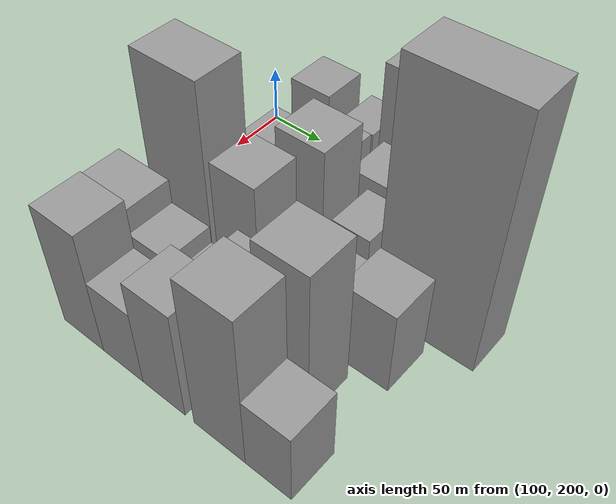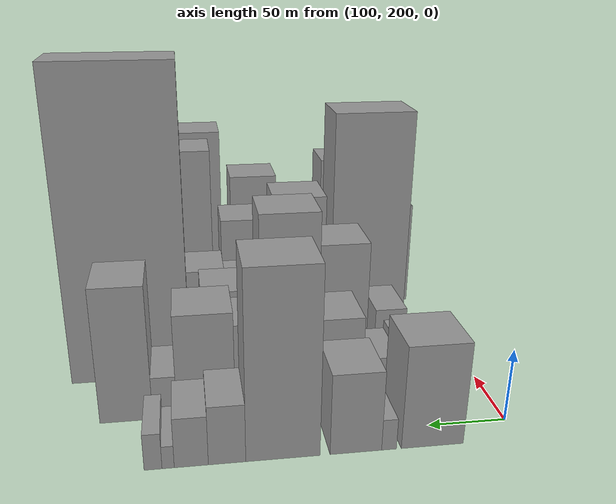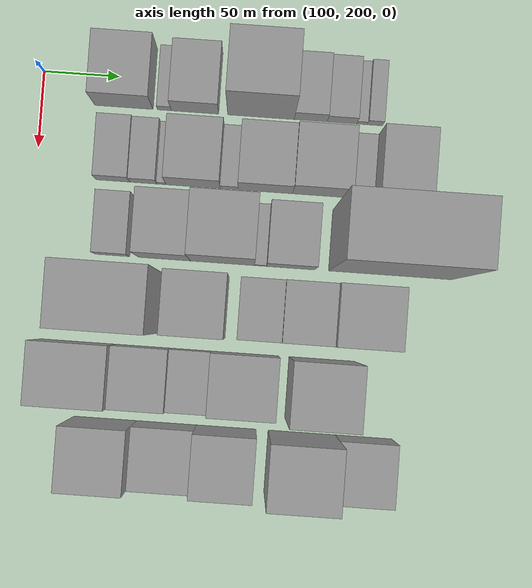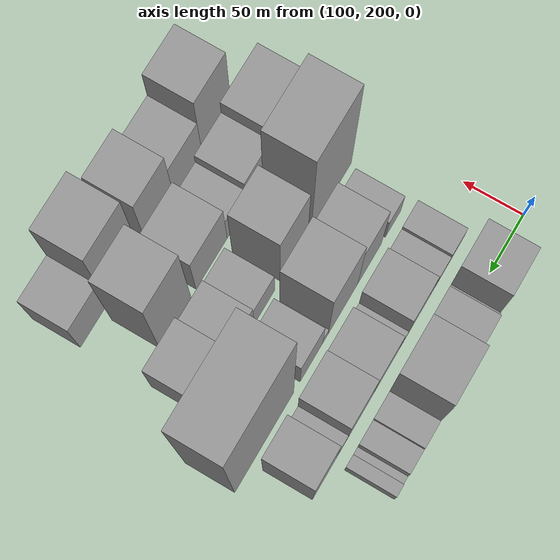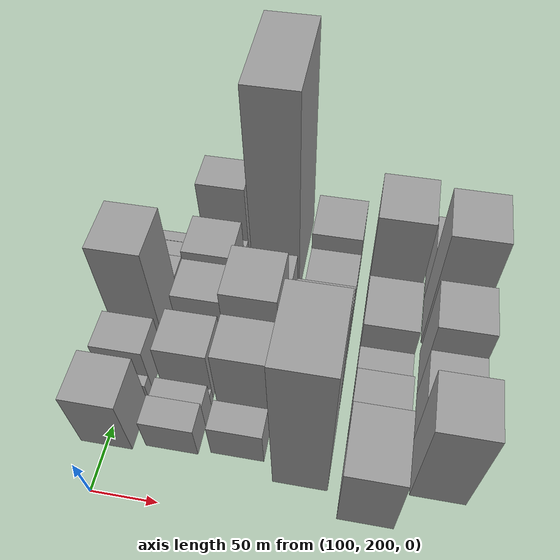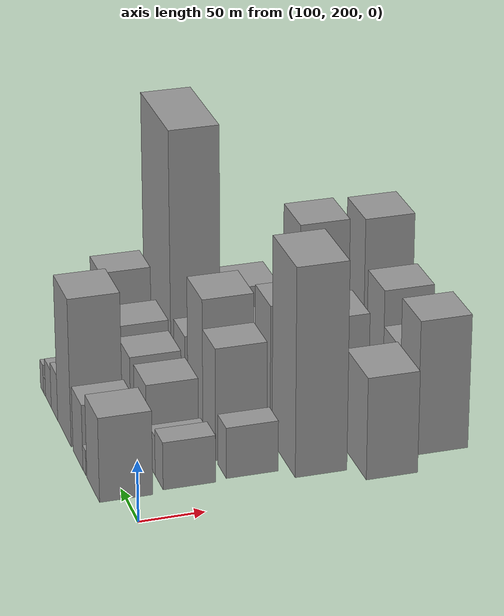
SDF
<sdf version="1.6">
 <world name="default">
  <model name="building_35">
   <static>1</static>
   <pose>100.0000 254.3415 0 0.000000 0.000000 0.000000</pose>
   <link name="link">
    <pose>0 0 34.50 0 0 0</pose>
    <collision name="collision"><geometry><box><size>40.0000 38.4075 69.0000</size></box></geometry></collision>
    <visual name="visual">
     <cast_shadows>0</cast_shadows>
     <geometry><box><size>40.0000 38.4075 69.0000</size></box></geometry>
     <material>
      <script>
       <uri>model://grey_wall/materials/scripts</uri>
       <uri>model://grey_wall/materials/textures</uri>
       <name>vrc/grey_wall</name>
      </script>
     </material>
    </visual>
   </link>
  </model>
  <model name="building_36">
   <static>1</static>
   <pose>100.0000 281.0811 0 0.000000 0.000000 0.000000</pose>
   <link name="link">
    <pose>0 0 10.50 0 0 0</pose>
    <collision name="collision"><geometry><box><size>40.0000 9.0717 21.0000</size></box></geometry></collision>
    <visual name="visual">
     <cast_shadows>0</cast_shadows>
     <geometry><box><size>40.0000 9.0717 21.0000</size></box></geometry>
     <material>
      <script>
       <uri>model://grey_wall/materials/scripts</uri>
       <uri>model://grey_wall/materials/textures</uri>
       <name>vrc/grey_wall</name>
      </script>
     </material>
    </visual>
   </link>
  </model>
  <model name="building_37">
   <static>1</static>
   <pose>100.0000 301.2184 0 0.000000 0.000000 0.000000</pose>
   <link name="link">
    <pose>0 0 27.00 0 0 0</pose>
    <collision name="collision"><geometry><box><size>40.0000 31.2029 54.0000</size></box></geometry></collision>
    <visual name="visual">
     <cast_shadows>0</cast_shadows>
     <geometry><box><size>40.0000 31.2029 54.0000</size></box></geometry>
     <material>
      <script>
       <uri>model://grey_wall/materials/scripts</uri>
       <uri>model://grey_wall/materials/textures</uri>
       <name>vrc/grey_wall</name>
      </script>
     </material>
    </visual>
   </link>
  </model>
  <model name="building_38">
   <static>1</static>
   <pose>100.0000 344.7618 0 0.000000 0.000000 0.000000</pose>
   <link name="link">
    <pose>0 0 61.50 0 0 0</pose>
    <collision name="collision"><geometry><box><size>40.0000 43.8839 123.0000</size></box></geometry></collision>
    <visual name="visual">
     <cast_shadows>0</cast_shadows>
     <geometry><box><size>40.0000 43.8839 123.0000</size></box></geometry>
     <material>
      <script>
       <uri>model://grey_wall/materials/scripts</uri>
       <uri>model://grey_wall/materials/textures</uri>
       <name>vrc/grey_wall</name>
      </script>
     </material>
    </visual>
   </link>
  </model>
  <model name="building_39">
   <static>1</static>
   <pose>100.0000 377.5432 0 0.000000 0.000000 0.000000</pose>
   <link name="link">
    <pose>0 0 19.50 0 0 0</pose>
    <collision name="collision"><geometry><box><size>40.0000 21.6790 39.0000</size></box></geometry></collision>
    <visual name="visual">
     <cast_shadows>0</cast_shadows>
     <geometry><box><size>40.0000 21.6790 39.0000</size></box></geometry>
     <material>
      <script>
       <uri>model://grey_wall/materials/scripts</uri>
       <uri>model://grey_wall/materials/textures</uri>
       <name>vrc/grey_wall</name>
      </script>
     </material>
    </visual>
   </link>
  </model>
  <model name="building_40">
   <static>1</static>
   <pose>100.0000 398.1407 0 0.000000 0.000000 0.000000</pose>
   <link name="link">
    <pose>0 0 16.50 0 0 0</pose>
    <collision name="collision"><geometry><box><size>40.0000 19.5160 33.0000</size></box></geometry></collision>
    <visual name="visual">
     <cast_shadows>0</cast_shadows>
     <geometry><box><size>40.0000 19.5160 33.0000</size></box></geometry>
     <material>
      <script>
       <uri>model://grey_wall/materials/scripts</uri>
       <uri>model://grey_wall/materials/textures</uri>
       <name>vrc/grey_wall</name>
      </script>
     </material>
    </visual>
   </link>
  </model>
  <model name="building_41">
   <static>1</static>
   <pose>100.0000 411.3787 0 0.000000 0.000000 0.000000</pose>
   <link name="link">
    <pose>0 0 7.50 0 0 0</pose>
    <collision name="collision"><geometry><box><size>40.0000 6.9599 15.0000</size></box></geometry></collision>
    <visual name="visual">
     <cast_shadows>0</cast_shadows>
     <geometry><box><size>40.0000 6.9599 15.0000</size></box></geometry>
     <material>
      <script>
       <uri>model://grey_wall/materials/scripts</uri>
       <uri>model://grey_wall/materials/textures</uri>
       <name>vrc/grey_wall</name>
      </script>
     </material>
    </visual>
   </link>
  </model>
  <model name="building_42">
   <static>1</static>
   <pose>100.0000 419.9391 0 0.000000 0.000000 0.000000</pose>
   <link name="link">
    <pose>0 0 12.00 0 0 0</pose>
    <collision name="collision"><geometry><box><size>40.0000 10.1609 24.0000</size></box></geometry></collision>
    <visual name="visual">
     <cast_shadows>0</cast_shadows>
     <geometry><box><size>40.0000 10.1609 24.0000</size></box></geometry>
     <material>
      <script>
       <uri>model://grey_wall/materials/scripts</uri>
       <uri>model://grey_wall/materials/textures</uri>
       <name>vrc/grey_wall</name>
      </script>
     </material>
    </visual>
   </link>
  </model>
  <model name="building_90">
   <static>1</static>
   <pose>149.0000 250.9738 0 0.000000 0.000000 0.000000</pose>
   <link name="link">
    <pose>0 0 19.50 0 0 0</pose>
    <collision name="collision"><geometry><box><size>40.0000 22.3221 39.0000</size></box></geometry></collision>
    <visual name="visual">
     <cast_shadows>0</cast_shadows>
     <geometry><box><size>40.0000 22.3221 39.0000</size></box></geometry>
     <material>
      <script>
       <uri>model://grey_wall/materials/scripts</uri>
       <uri>model://grey_wall/materials/textures</uri>
       <name>vrc/grey_wall</name>
      </script>
     </material>
    </visual>
   </link>
  </model>
  <model name="building_91">
   <static>1</static>
   <pose>149.0000 270.9331 0 0.000000 0.000000 0.000000</pose>
   <link name="link">
    <pose>0 0 16.50 0 0 0</pose>
    <collision name="collision"><geometry><box><size>40.0000 17.5966 33.0000</size></box></geometry></collision>
    <visual name="visual">
     <cast_shadows>0</cast_shadows>
     <geometry><box><size>40.0000 17.5966 33.0000</size></box></geometry>
     <material>
      <script>
       <uri>model://grey_wall/materials/scripts</uri>
       <uri>model://grey_wall/materials/textures</uri>
       <name>vrc/grey_wall</name>
      </script>
     </material>
    </visual>
   </link>
  </model>
  <model name="building_92">
   <static>1</static>
   <pose>149.0000 282.7939 0 0.000000 0.000000 0.000000</pose>
   <link name="link">
    <pose>0 0 7.50 0 0 0</pose>
    <collision name="collision"><geometry><box><size>40.0000 6.1250 15.0000</size></box></geometry></collision>
    <visual name="visual">
     <cast_shadows>0</cast_shadows>
     <geometry><box><size>40.0000 6.1250 15.0000</size></box></geometry>
     <material>
      <script>
       <uri>model://grey_wall/materials/scripts</uri>
       <uri>model://grey_wall/materials/textures</uri>
       <name>vrc/grey_wall</name>
      </script>
     </material>
    </visual>
   </link>
  </model>
  <model name="building_93">
   <static>1</static>
   <pose>149.0000 303.6468 0 0.000000 0.000000 0.000000</pose>
   <link name="link">
    <pose>0 0 31.50 0 0 0</pose>
    <collision name="collision"><geometry><box><size>40.0000 35.5808 63.0000</size></box></geometry></collision>
    <visual name="visual">
     <cast_shadows>0</cast_shadows>
     <geometry><box><size>40.0000 35.5808 63.0000</size></box></geometry>
     <material>
      <script>
       <uri>model://grey_wall/materials/scripts</uri>
       <uri>model://grey_wall/materials/textures</uri>
       <name>vrc/grey_wall</name>
      </script>
     </material>
    </visual>
   </link>
  </model>
  <model name="building_94">
   <static>1</static>
   <pose>149.0000 327.3391 0 0.000000 0.000000 0.000000</pose>
   <link name="link">
    <pose>0 0 12.00 0 0 0</pose>
    <collision name="collision"><geometry><box><size>40.0000 11.8040 24.0000</size></box></geometry></collision>
    <visual name="visual">
     <cast_shadows>0</cast_shadows>
     <geometry><box><size>40.0000 11.8040 24.0000</size></box></geometry>
     <material>
      <script>
       <uri>model://grey_wall/materials/scripts</uri>
       <uri>model://grey_wall/materials/textures</uri>
       <name>vrc/grey_wall</name>
      </script>
     </material>
    </visual>
   </link>
  </model>
  <model name="building_95">
   <static>1</static>
   <pose>149.0000 351.0810 0 0.000000 0.000000 0.000000</pose>
   <link name="link">
    <pose>0 0 31.50 0 0 0</pose>
    <collision name="collision"><geometry><box><size>40.0000 35.6799 63.0000</size></box></geometry></collision>
    <visual name="visual">
     <cast_shadows>0</cast_shadows>
     <geometry><box><size>40.0000 35.6799 63.0000</size></box></geometry>
     <material>
      <script>
       <uri>model://grey_wall/materials/scripts</uri>
       <uri>model://grey_wall/materials/textures</uri>
       <name>vrc/grey_wall</name>
      </script>
     </material>
    </visual>
   </link>
  </model>
  <model name="building_96">
   <static>1</static>
   <pose>149.0000 387.4846 0 0.000000 0.000000 0.000000</pose>
   <link name="link">
    <pose>0 0 36.00 0 0 0</pose>
    <collision name="collision"><geometry><box><size>40.0000 37.1271 72.0000</size></box></geometry></collision>
    <visual name="visual">
     <cast_shadows>0</cast_shadows>
     <geometry><box><size>40.0000 37.1271 72.0000</size></box></geometry>
     <material>
      <script>
       <uri>model://grey_wall/materials/scripts</uri>
       <uri>model://grey_wall/materials/textures</uri>
       <name>vrc/grey_wall</name>
      </script>
     </material>
    </visual>
   </link>
  </model>
  <model name="building_97">
   <static>1</static>
   <pose>149.0000 413.6735 0 0.000000 0.000000 0.000000</pose>
   <link name="link">
    <pose>0 0 15.00 0 0 0</pose>
    <collision name="collision"><geometry><box><size>40.0000 15.2506 30.0000</size></box></geometry></collision>
    <visual name="visual">
     <cast_shadows>0</cast_shadows>
     <geometry><box><size>40.0000 15.2506 30.0000</size></box></geometry>
     <material>
      <script>
       <uri>model://grey_wall/materials/scripts</uri>
       <uri>model://grey_wall/materials/textures</uri>
       <name>vrc/grey_wall</name>
      </script>
     </material>
    </visual>
   </link>
  </model>
  <model name="building_98">
   <static>1</static>
   <pose>149.0000 437.7267 0 0.000000 0.000000 0.000000</pose>
   <link name="link">
    <pose>0 0 46.50 0 0 0</pose>
    <collision name="collision"><geometry><box><size>40.0000 32.8558 93.0000</size></box></geometry></collision>
    <visual name="visual">
     <cast_shadows>0</cast_shadows>
     <geometry><box><size>40.0000 32.8558 93.0000</size></box></geometry>
     <material>
      <script>
       <uri>model://grey_wall/materials/scripts</uri>
       <uri>model://grey_wall/materials/textures</uri>
       <name>vrc/grey_wall</name>
      </script>
     </material>
    </visual>
   </link>
  </model>
  <model name="building_145">
   <static>1</static>
   <pose>198.0000 254.0576 0 0.000000 0.000000 0.000000</pose>
   <link name="link">
    <pose>0 0 21.00 0 0 0</pose>
    <collision name="collision"><geometry><box><size>40.0000 22.4533 42.0000</size></box></geometry></collision>
    <visual name="visual">
     <cast_shadows>0</cast_shadows>
     <geometry><box><size>40.0000 22.4533 42.0000</size></box></geometry>
     <material>
      <script>
       <uri>model://grey_wall/materials/scripts</uri>
       <uri>model://grey_wall/materials/textures</uri>
       <name>vrc/grey_wall</name>
      </script>
     </material>
    </visual>
   </link>
  </model>
  <model name="building_146">
   <static>1</static>
   <pose>198.0000 288.4179 0 0.000000 0.000000 0.000000</pose>
   <link name="link">
    <pose>0 0 46.50 0 0 0</pose>
    <collision name="collision"><geometry><box><size>40.0000 34.2671 93.0000</size></box></geometry></collision>
    <visual name="visual">
     <cast_shadows>0</cast_shadows>
     <geometry><box><size>40.0000 34.2671 93.0000</size></box></geometry>
     <material>
      <script>
       <uri>model://grey_wall/materials/scripts</uri>
       <uri>model://grey_wall/materials/textures</uri>
       <name>vrc/grey_wall</name>
      </script>
     </material>
    </visual>
   </link>
  </model>
  <model name="building_147">
   <static>1</static>
   <pose>198.0000 326.5581 0 0.000000 0.000000 0.000000</pose>
   <link name="link">
    <pose>0 0 58.50 0 0 0</pose>
    <collision name="collision"><geometry><box><size>40.0000 42.0132 117.0000</size></box></geometry></collision>
    <visual name="visual">
     <cast_shadows>0</cast_shadows>
     <geometry><box><size>40.0000 42.0132 117.0000</size></box></geometry>
     <material>
      <script>
       <uri>model://grey_wall/materials/scripts</uri>
       <uri>model://grey_wall/materials/textures</uri>
       <name>vrc/grey_wall</name>
      </script>
     </material>
    </visual>
   </link>
  </model>
  <model name="building_148">
   <static>1</static>
   <pose>198.0000 351.4701 0 0.000000 0.000000 0.000000</pose>
   <link name="link">
    <pose>0 0 9.00 0 0 0</pose>
    <collision name="collision"><geometry><box><size>40.0000 7.8107 18.0000</size></box></geometry></collision>
    <visual name="visual">
     <cast_shadows>0</cast_shadows>
     <geometry><box><size>40.0000 7.8107 18.0000</size></box></geometry>
     <material>
      <script>
       <uri>model://grey_wall/materials/scripts</uri>
       <uri>model://grey_wall/materials/textures</uri>
       <name>vrc/grey_wall</name>
      </script>
     </material>
    </visual>
   </link>
  </model>
  <model name="building_149">
   <static>1</static>
   <pose>198.0000 371.3286 0 0.000000 0.000000 0.000000</pose>
   <link name="link">
    <pose>0 0 31.50 0 0 0</pose>
    <collision name="collision"><geometry><box><size>40.0000 31.9063 63.0000</size></box></geometry></collision>
    <visual name="visual">
     <cast_shadows>0</cast_shadows>
     <geometry><box><size>40.0000 31.9063 63.0000</size></box></geometry>
     <material>
      <script>
       <uri>model://grey_wall/materials/scripts</uri>
       <uri>model://grey_wall/materials/textures</uri>
       <name>vrc/grey_wall</name>
      </script>
     </material>
    </visual>
   </link>
  </model>
  <model name="building_150">
   <static>1</static>
   <pose>198.0000 436.7888 0 0.000000 0.000000 0.000000</pose>
   <link name="link">
    <pose>0 0 108.00 0 0 0</pose>
    <collision name="collision"><geometry><box><size>40.0000 81.0141 216.0000</size></box></geometry></collision>
    <visual name="visual">
     <cast_shadows>0</cast_shadows>
     <geometry><box><size>40.0000 81.0141 216.0000</size></box></geometry>
     <material>
      <script>
       <uri>model://grey_wall/materials/scripts</uri>
       <uri>model://grey_wall/materials/textures</uri>
       <name>vrc/grey_wall</name>
      </script>
     </material>
    </visual>
   </link>
  </model>
  <model name="building_186">
   <static>1</static>
   <pose>247.0000 258.4437 0 0.000000 0.000000 0.000000</pose>
   <link name="link">
    <pose>0 0 85.50 0 0 0</pose>
    <collision name="collision"><geometry><box><size>40.0000 58.0077 171.0000</size></box></geometry></collision>
    <visual name="visual">
     <cast_shadows>0</cast_shadows>
     <geometry><box><size>40.0000 58.0077 171.0000</size></box></geometry>
     <material>
      <script>
       <uri>model://grey_wall/materials/scripts</uri>
       <uri>model://grey_wall/materials/textures</uri>
       <name>vrc/grey_wall</name>
      </script>
     </material>
    </visual>
   </link>
  </model>
  <model name="building_187">
   <static>1</static>
   <pose>247.0000 312.0075 0 0.000000 0.000000 0.000000</pose>
   <link name="link">
    <pose>0 0 55.50 0 0 0</pose>
    <collision name="collision"><geometry><box><size>40.0000 39.1199 111.0000</size></box></geometry></collision>
    <visual name="visual">
     <cast_shadows>0</cast_shadows>
     <geometry><box><size>40.0000 39.1199 111.0000</size></box></geometry>
     <material>
      <script>
       <uri>model://grey_wall/materials/scripts</uri>
       <uri>model://grey_wall/materials/textures</uri>
       <name>vrc/grey_wall</name>
      </script>
     </material>
    </visual>
   </link>
  </model>
  <model name="building_188">
   <static>1</static>
   <pose>247.0000 353.9020 0 0.000000 0.000000 0.000000</pose>
   <link name="link">
    <pose>0 0 24.00 0 0 0</pose>
    <collision name="collision"><geometry><box><size>40.0000 28.6692 48.0000</size></box></geometry></collision>
    <visual name="visual">
     <cast_shadows>0</cast_shadows>
     <geometry><box><size>40.0000 28.6692 48.0000</size></box></geometry>
     <material>
      <script>
       <uri>model://grey_wall/materials/scripts</uri>
       <uri>model://grey_wall/materials/textures</uri>
       <name>vrc/grey_wall</name>
      </script>
     </material>
    </visual>
   </link>
  </model>
  <model name="building_189">
   <static>1</static>
   <pose>247.0000 385.0240 0 0.000000 0.000000 0.000000</pose>
   <link name="link">
    <pose>0 0 28.50 0 0 0</pose>
    <collision name="collision"><geometry><box><size>40.0000 33.5748 57.0000</size></box></geometry></collision>
    <visual name="visual">
     <cast_shadows>0</cast_shadows>
     <geometry><box><size>40.0000 33.5748 57.0000</size></box></geometry>
     <material>
      <script>
       <uri>model://grey_wall/materials/scripts</uri>
       <uri>model://grey_wall/materials/textures</uri>
       <name>vrc/grey_wall</name>
      </script>
     </material>
    </visual>
   </link>
  </model>
  <model name="building_190">
   <static>1</static>
   <pose>247.0000 422.6155 0 0.000000 0.000000 0.000000</pose>
   <link name="link">
    <pose>0 0 37.50 0 0 0</pose>
    <collision name="collision"><geometry><box><size>40.0000 41.6082 75.0000</size></box></geometry></collision>
    <visual name="visual">
     <cast_shadows>0</cast_shadows>
     <geometry><box><size>40.0000 41.6082 75.0000</size></box></geometry>
     <material>
      <script>
       <uri>model://grey_wall/materials/scripts</uri>
       <uri>model://grey_wall/materials/textures</uri>
       <name>vrc/grey_wall</name>
      </script>
     </material>
    </visual>
   </link>
  </model>
  <model name="building_236">
   <static>1</static>
   <pose>296.0000 236.1553 0 0.000000 0.000000 0.000000</pose>
   <link name="link">
    <pose>0 0 42.00 0 0 0</pose>
    <collision name="collision"><geometry><box><size>40.0000 49.9152 84.0000</size></box></geometry></collision>
    <visual name="visual">
     <cast_shadows>0</cast_shadows>
     <geometry><box><size>40.0000 49.9152 84.0000</size></box></geometry>
     <material>
      <script>
       <uri>model://grey_wall/materials/scripts</uri>
       <uri>model://grey_wall/materials/textures</uri>
       <name>vrc/grey_wall</name>
      </script>
     </material>
    </visual>
   </link>
  </model>
  <model name="building_237">
   <static>1</static>
   <pose>296.0000 279.1903 0 0.000000 0.000000 0.000000</pose>
   <link name="link">
    <pose>0 0 31.50 0 0 0</pose>
    <collision name="collision"><geometry><box><size>40.0000 36.1548 63.0000</size></box></geometry></collision>
    <visual name="visual">
     <cast_shadows>0</cast_shadows>
     <geometry><box><size>40.0000 36.1548 63.0000</size></box></geometry>
     <material>
      <script>
       <uri>model://grey_wall/materials/scripts</uri>
       <uri>model://grey_wall/materials/textures</uri>
       <name>vrc/grey_wall</name>
      </script>
     </material>
    </visual>
   </link>
  </model>
  <model name="building_238">
   <static>1</static>
   <pose>296.0000 310.6424 0 0.000000 0.000000 0.000000</pose>
   <link name="link">
    <pose>0 0 24.00 0 0 0</pose>
    <collision name="collision"><geometry><box><size>40.0000 26.7494 48.0000</size></box></geometry></collision>
    <visual name="visual">
     <cast_shadows>0</cast_shadows>
     <geometry><box><size>40.0000 26.7494 48.0000</size></box></geometry>
     <material>
      <script>
       <uri>model://grey_wall/materials/scripts</uri>
       <uri>model://grey_wall/materials/textures</uri>
       <name>vrc/grey_wall</name>
      </script>
     </material>
    </visual>
   </link>
  </model>
  <model name="building_239">
   <static>1</static>
   <pose>296.0000 345.6736 0 0.000000 0.000000 0.000000</pose>
   <link name="link">
    <pose>0 0 39.00 0 0 0</pose>
    <collision name="collision"><geometry><box><size>40.0000 43.3129 78.0000</size></box></geometry></collision>
    <visual name="visual">
     <cast_shadows>0</cast_shadows>
     <geometry><box><size>40.0000 43.3129 78.0000</size></box></geometry>
     <material>
      <script>
       <uri>model://grey_wall/materials/scripts</uri>
       <uri>model://grey_wall/materials/textures</uri>
       <name>vrc/grey_wall</name>
      </script>
     </material>
    </visual>
   </link>
  </model>
  <model name="building_240">
   <static>1</static>
   <pose>296.0000 395.7084 0 0.000000 0.000000 0.000000</pose>
   <link name="link">
    <pose>0 0 67.50 0 0 0</pose>
    <collision name="collision"><geometry><box><size>40.0000 42.7569 135.0000</size></box></geometry></collision>
    <visual name="visual">
     <cast_shadows>0</cast_shadows>
     <geometry><box><size>40.0000 42.7569 135.0000</size></box></geometry>
     <material>
      <script>
       <uri>model://grey_wall/materials/scripts</uri>
       <uri>model://grey_wall/materials/textures</uri>
       <name>vrc/grey_wall</name>
      </script>
     </material>
    </visual>
   </link>
  </model>
  <model name="building_284">
   <static>1</static>
   <pose>345.0000 257.2394 0 0.000000 0.000000 0.000000</pose>
   <link name="link">
    <pose>0 0 55.50 0 0 0</pose>
    <collision name="collision"><geometry><box><size>40.0000 41.2723 111.0000</size></box></geometry></collision>
    <visual name="visual">
     <cast_shadows>0</cast_shadows>
     <geometry><box><size>40.0000 41.2723 111.0000</size></box></geometry>
     <material>
      <script>
       <uri>model://grey_wall/materials/scripts</uri>
       <uri>model://grey_wall/materials/textures</uri>
       <name>vrc/grey_wall</name>
      </script>
     </material>
    </visual>
   </link>
  </model>
  <model name="building_285">
   <static>1</static>
   <pose>345.0000 297.4078 0 0.000000 0.000000 0.000000</pose>
   <link name="link">
    <pose>0 0 34.50 0 0 0</pose>
    <collision name="collision"><geometry><box><size>40.0000 39.0646 69.0000</size></box></geometry></collision>
    <visual name="visual">
     <cast_shadows>0</cast_shadows>
     <geometry><box><size>40.0000 39.0646 69.0000</size></box></geometry>
     <material>
      <script>
       <uri>model://grey_wall/materials/scripts</uri>
       <uri>model://grey_wall/materials/textures</uri>
       <name>vrc/grey_wall</name>
      </script>
     </material>
    </visual>
   </link>
  </model>
  <model name="building_286">
   <static>1</static>
   <pose>345.0000 336.5134 0 0.000000 0.000000 0.000000</pose>
   <link name="link">
    <pose>0 0 49.50 0 0 0</pose>
    <collision name="collision"><geometry><box><size>40.0000 39.1464 99.0000</size></box></geometry></collision>
    <visual name="visual">
     <cast_shadows>0</cast_shadows>
     <geometry><box><size>40.0000 39.1464 99.0000</size></box></geometry>
     <material>
      <script>
       <uri>model://grey_wall/materials/scripts</uri>
       <uri>model://grey_wall/materials/textures</uri>
       <name>vrc/grey_wall</name>
      </script>
     </material>
    </visual>
   </link>
  </model>
  <model name="building_287">
   <static>1</static>
   <pose>345.0000 386.1127 0 0.000000 0.000000 0.000000</pose>
   <link name="link">
    <pose>0 0 69.00 0 0 0</pose>
    <collision name="collision"><geometry><box><size>40.0000 44.0524 138.0000</size></box></geometry></collision>
    <visual name="visual">
     <cast_shadows>0</cast_shadows>
     <geometry><box><size>40.0000 44.0524 138.0000</size></box></geometry>
     <material>
      <script>
       <uri>model://grey_wall/materials/scripts</uri>
       <uri>model://grey_wall/materials/textures</uri>
       <name>vrc/grey_wall</name>
      </script>
     </material>
    </visual>
   </link>
  </model>
  <model name="building_288">
   <static>1</static>
   <pose>345.0000 426.6532 0 0.000000 0.000000 0.000000</pose>
   <link name="link">
    <pose>0 0 33.00 0 0 0</pose>
    <collision name="collision"><geometry><box><size>40.0000 37.0285 66.0000</size></box></geometry></collision>
    <visual name="visual">
     <cast_shadows>0</cast_shadows>
     <geometry><box><size>40.0000 37.0285 66.0000</size></box></geometry>
     <material>
      <script>
       <uri>model://grey_wall/materials/scripts</uri>
       <uri>model://grey_wall/materials/textures</uri>
       <name>vrc/grey_wall</name>
      </script>
     </material>
    </visual>
   </link>
  </model>
 </world>
</sdf>
